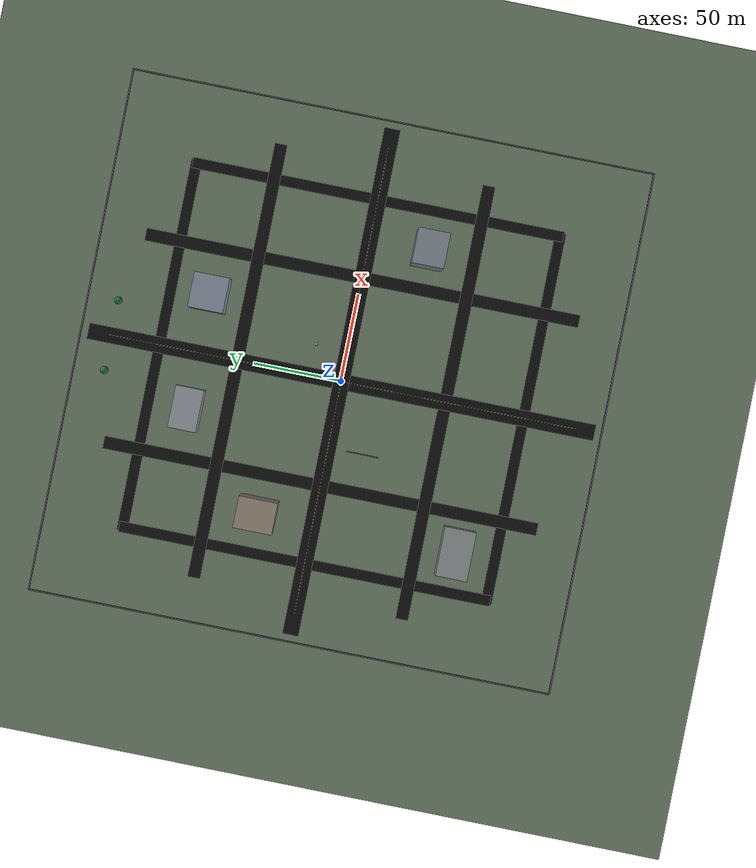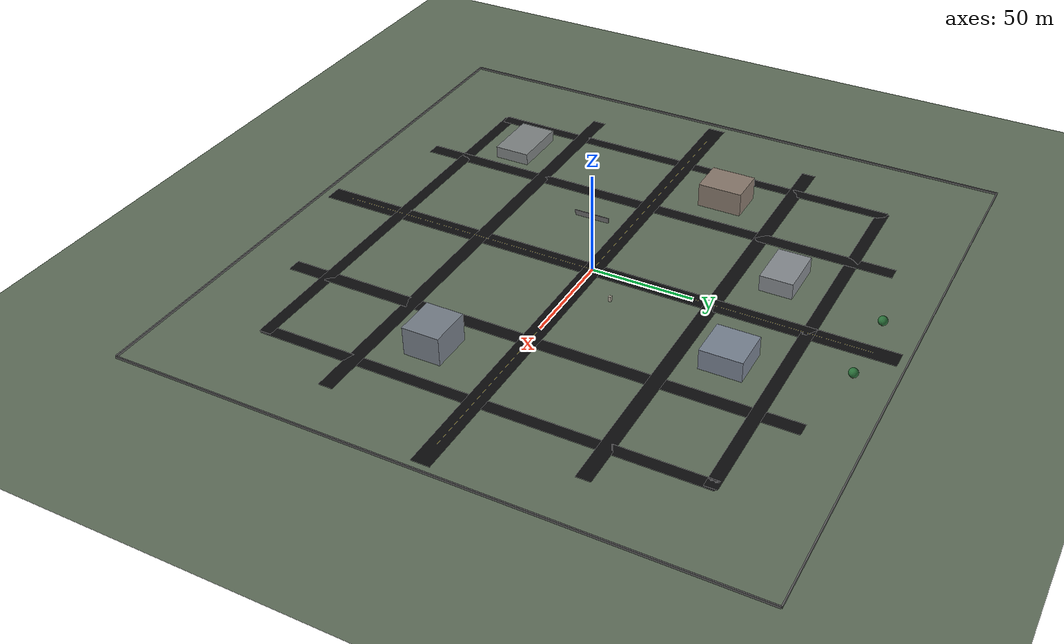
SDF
<sdf version="1.7">
 <world name="real">
  <include><uri>model://sun</uri></include>
  <model name="real_ground">
   <static>true</static>
   <link name="link">
    <collision name="collision">
     <geometry><plane><normal>0 0 1</normal><size>320 320</size></plane></geometry>
     <surface>
      <contact><collide_bitmask>65535</collide_bitmask></contact>
      <friction><ode><mu>100</mu><mu2>50</mu2></ode></friction>
     </surface>
    </collision>
    <visual name="visual">
     <cast_shadows>false</cast_shadows>
     <geometry><plane><normal>0 0 1</normal><size>320 320</size></plane></geometry>
     <material><ambient>0.33 0.39 0.33 1</ambient><diffuse>0.38 0.44 0.36 1</diffuse></material>
    </visual>
   </link>
  </model>
  <model name="road_network">
   <static>true</static>
   <link name="main_avenue_ns">
    <pose>0 0 0.006 0 0 0</pose>
    <visual name="visual">
     <cast_shadows>false</cast_shadows>
     <geometry><box><size>9 292 0.012</size></box></geometry>
     <material><ambient>0.035 0.037 0.04 1</ambient><diffuse>0.045 0.047 0.05 1</diffuse></material>
    </visual>
   </link>
   <link name="main_avenue_ew">
    <pose>0 0 0.007 0 0 0</pose>
    <visual name="visual">
     <cast_shadows>false</cast_shadows>
     <geometry><box><size>292 9 0.012</size></box></geometry>
     <material><ambient>0.035 0.037 0.04 1</ambient><diffuse>0.045 0.047 0.05 1</diffuse></material>
    </visual>
   </link>
   <link name="north_grid_road">
    <pose>0 60 0.006 0 0 0</pose>
    <visual name="visual">
     <cast_shadows>false</cast_shadows>
     <geometry><box><size>250 7 0.012</size></box></geometry>
     <material><ambient>0.04 0.042 0.045 1</ambient><diffuse>0.052 0.054 0.058 1</diffuse></material>
    </visual>
   </link>
   <link name="south_grid_road">
    <pose>0 -60 0.006 0 0 0</pose>
    <visual name="visual">
     <cast_shadows>false</cast_shadows>
     <geometry><box><size>250 7 0.012</size></box></geometry>
     <material><ambient>0.04 0.042 0.045 1</ambient><diffuse>0.052 0.054 0.058 1</diffuse></material>
    </visual>
   </link>
   <link name="east_grid_road">
    <pose>60 0 0.006 0 0 0</pose>
    <visual name="visual">
     <cast_shadows>false</cast_shadows>
     <geometry><box><size>7 250 0.012</size></box></geometry>
     <material><ambient>0.04 0.042 0.045 1</ambient><diffuse>0.052 0.054 0.058 1</diffuse></material>
    </visual>
   </link>
   <link name="west_grid_road">
    <pose>-60 0 0.006 0 0 0</pose>
    <visual name="visual">
     <cast_shadows>false</cast_shadows>
     <geometry><box><size>7 250 0.012</size></box></geometry>
     <material><ambient>0.04 0.042 0.045 1</ambient><diffuse>0.052 0.054 0.058 1</diffuse></material>
    </visual>
   </link>
   <link name="east_service_road">
    <pose>105 0 0.006 0 0 0</pose>
    <visual name="visual">
     <cast_shadows>false</cast_shadows>
     <geometry><box><size>6 214 0.012</size></box></geometry>
     <material><ambient>0.04 0.042 0.045 1</ambient><diffuse>0.052 0.054 0.058 1</diffuse></material>
    </visual>
   </link>
   <link name="west_service_road">
    <pose>-105 0 0.006 0 0 0</pose>
    <visual name="visual">
     <cast_shadows>false</cast_shadows>
     <geometry><box><size>6 214 0.012</size></box></geometry>
     <material><ambient>0.04 0.042 0.045 1</ambient><diffuse>0.052 0.054 0.058 1</diffuse></material>
    </visual>
   </link>
   <link name="north_service_road">
    <pose>0 105 0.006 0 0 0</pose>
    <visual name="visual">
     <cast_shadows>false</cast_shadows>
     <geometry><box><size>214 6 0.012</size></box></geometry>
     <material><ambient>0.04 0.042 0.045 1</ambient><diffuse>0.052 0.054 0.058 1</diffuse></material>
    </visual>
   </link>
   <link name="south_service_road">
    <pose>0 -105 0.006 0 0 0</pose>
    <visual name="visual">
     <cast_shadows>false</cast_shadows>
     <geometry><box><size>214 6 0.012</size></box></geometry>
     <material><ambient>0.04 0.042 0.045 1</ambient><diffuse>0.052 0.054 0.058 1</diffuse></material>
    </visual>
   </link>
   <link name="center_lane_marking_ns">
    <pose>0 0 0.014 0 0 0</pose>
    <visual name="visual">
     <cast_shadows>false</cast_shadows>
     <geometry><box><size>0.12 270 0.006</size></box></geometry>
     <material><ambient>0.85 0.78 0.18 1</ambient><diffuse>0.95 0.86 0.22 1</diffuse></material>
    </visual>
   </link>
   <link name="center_lane_marking_ew">
    <pose>0 0 0.015 0 0 0</pose>
    <visual name="visual">
     <cast_shadows>false</cast_shadows>
     <geometry><box><size>270 0.12 0.006</size></box></geometry>
     <material><ambient>0.85 0.78 0.18 1</ambient><diffuse>0.95 0.86 0.22 1</diffuse></material>
    </visual>
   </link>
  </model>
  <model name="static_city_geometry">
   <static>true</static>
   <link name="north_boundary">
    <pose>0 150 0.55 0 0 0</pose>
    <collision name="collision"><geometry><box><size>300 0.6 1.1</size></box></geometry></collision>
    <visual name="visual">
     <geometry><box><size>300 0.6 1.1</size></box></geometry>
     <material><ambient>0.31 0.31 0.31 1</ambient><diffuse>0.38 0.38 0.38 1</diffuse></material>
    </visual>
   </link>
   <link name="south_boundary">
    <pose>0 -150 0.55 0 0 0</pose>
    <collision name="collision"><geometry><box><size>300 0.6 1.1</size></box></geometry></collision>
    <visual name="visual">
     <geometry><box><size>300 0.6 1.1</size></box></geometry>
     <material><ambient>0.31 0.31 0.31 1</ambient><diffuse>0.38 0.38 0.38 1</diffuse></material>
    </visual>
   </link>
   <link name="east_boundary">
    <pose>150 0 0.55 0 0 0</pose>
    <collision name="collision"><geometry><box><size>0.6 300 1.1</size></box></geometry></collision>
    <visual name="visual">
     <geometry><box><size>0.6 300 1.1</size></box></geometry>
     <material><ambient>0.31 0.31 0.31 1</ambient><diffuse>0.38 0.38 0.38 1</diffuse></material>
    </visual>
   </link>
   <link name="west_boundary">
    <pose>-150 0 0.55 0 0 0</pose>
    <collision name="collision"><geometry><box><size>0.6 300 1.1</size></box></geometry></collision>
    <visual name="visual">
     <geometry><box><size>0.6 300 1.1</size></box></geometry>
     <material><ambient>0.31 0.31 0.31 1</ambient><diffuse>0.38 0.38 0.38 1</diffuse></material>
    </visual>
   </link>
   <link name="warehouse_block_a">
    <pose>-32 82 4 0 0 0</pose>
    <collision name="collision"><geometry><box><size>24 16 8</size></box></geometry></collision>
    <visual name="visual">
     <geometry><box><size>24 16 8</size></box></geometry>
     <material><ambient>0.43 0.45 0.47 1</ambient><diffuse>0.53 0.55 0.57 1</diffuse></material>
    </visual>
   </link>
   <link name="warehouse_block_b">
    <pose>34 82 5 0 0 0</pose>
    <collision name="collision"><geometry><box><size>20 20 10</size></box></geometry></collision>
    <visual name="visual">
     <geometry><box><size>20 20 10</size></box></geometry>
     <material><ambient>0.38 0.42 0.47 1</ambient><diffuse>0.48 0.52 0.58 1</diffuse></material>
    </visual>
   </link>
   <link name="apartment_block_a">
    <pose>-82 32 6 0 0 0</pose>
    <collision name="collision"><geometry><box><size>18 22 12</size></box></geometry></collision>
    <visual name="visual">
     <geometry><box><size>18 22 12</size></box></geometry>
     <material><ambient>0.43 0.38 0.35 1</ambient><diffuse>0.54 0.48 0.43 1</diffuse></material>
    </visual>
   </link>
   <link name="apartment_block_b">
    <pose>82 -34 7 0 0 0</pose>
    <collision name="collision"><geometry><box><size>20 18 14</size></box></geometry></collision>
    <visual name="visual">
     <geometry><box><size>20 18 14</size></box></geometry>
     <material><ambient>0.37 0.40 0.43 1</ambient><diffuse>0.47 0.50 0.54 1</diffuse></material>
    </visual>
   </link>
   <link name="industrial_shed">
    <pose>-82 -82 3 0 0 0</pose>
    <collision name="collision"><geometry><box><size>28 18 6</size></box></geometry></collision>
    <visual name="visual">
     <geometry><box><size>28 18 6</size></box></geometry>
     <material><ambient>0.40 0.42 0.42 1</ambient><diffuse>0.50 0.52 0.52 1</diffuse></material>
    </visual>
   </link>
   <link name="plaza_obelisk">
    <pose>18 18 1.25 0 0 0</pose>
    <collision name="collision"><geometry><box><size>1.4 1.4 2.5</size></box></geometry></collision>
    <visual name="visual">
     <geometry><box><size>1.4 1.4 2.5</size></box></geometry>
     <material><ambient>0.58 0.56 0.50 1</ambient><diffuse>0.68 0.66 0.60 1</diffuse></material>
    </visual>
   </link>
   <link name="loading_dock_wall">
    <pose>-38 -20 1.4 0 0 1.5708</pose>
    <collision name="collision"><geometry><box><size>18 0.25 2.8</size></box></geometry></collision>
    <visual name="visual">
     <geometry><box><size>18 0.25 2.8</size></box></geometry>
     <material><ambient>0.30 0.30 0.30 1</ambient><diffuse>0.42 0.42 0.42 1</diffuse></material>
    </visual>
   </link>
   <link name="north_tree_line_1">
    <pose>-20 132 2.7 0 0 0</pose>
    <collision name="trunk">
     <pose>0 0 -1.75 0 0 0</pose>
     <geometry><cylinder><radius>0.35</radius><length>1.9</length></cylinder></geometry>
    </collision>
    <visual name="trunk_visual">
     <pose>0 0 -1.75 0 0 0</pose>
     <geometry><cylinder><radius>0.35</radius><length>1.9</length></cylinder></geometry>
     <material><ambient>0.30 0.20 0.12 1</ambient><diffuse>0.38 0.25 0.15 1</diffuse></material>
    </visual>
    <visual name="canopy">
     <geometry><sphere><radius>2.2</radius></sphere></geometry>
     <material><ambient>0.12 0.34 0.18 1</ambient><diffuse>0.16 0.44 0.22 1</diffuse></material>
    </visual>
   </link>
   <link name="north_tree_line_2">
    <pose>20 132 2.7 0 0 0</pose>
    <collision name="trunk">
     <pose>0 0 -1.75 0 0 0</pose>
     <geometry><cylinder><radius>0.35</radius><length>1.9</length></cylinder></geometry>
    </collision>
    <visual name="trunk_visual">
     <pose>0 0 -1.75 0 0 0</pose>
     <geometry><cylinder><radius>0.35</radius><length>1.9</length></cylinder></geometry>
     <material><ambient>0.30 0.20 0.12 1</ambient><diffuse>0.38 0.25 0.15 1</diffuse></material>
    </visual>
    <visual name="canopy">
     <geometry><sphere><radius>2.2</radius></sphere></geometry>
     <material><ambient>0.12 0.34 0.18 1</ambient><diffuse>0.16 0.44 0.22 1</diffuse></material>
    </visual>
   </link>
  </model>
 </world>
</sdf>
